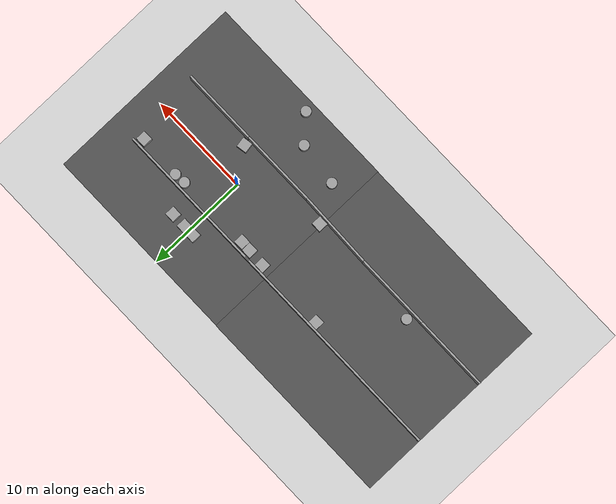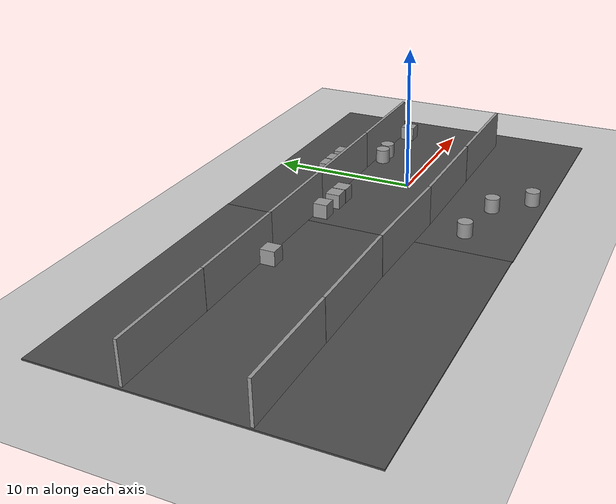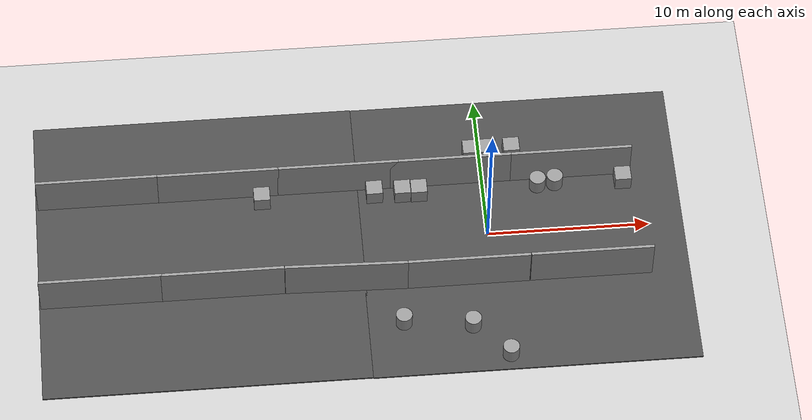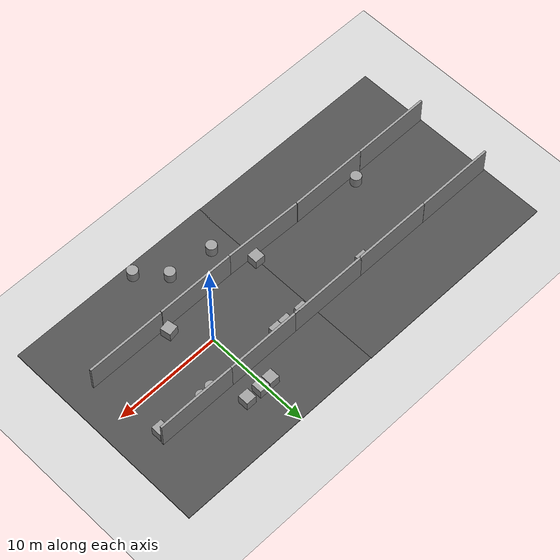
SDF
<sdf version="1.4">
 <world name="default">
  <physics type="ode">
   <gravity>0 0 -9.8</gravity>
   <ode>
    <solver><type>quick</type><iters>20</iters><sor>1</sor></solver>
    <constraints>
     <cfm>0</cfm>
     <erp>0.2</erp>
     <contact_max_correcting_vel>100</contact_max_correcting_vel>
     <contact_surface_layer>0</contact_surface_layer>
    </constraints>
   </ode>
   <max_step_size>0.001</max_step_size>
   <real_time_factor>1</real_time_factor>
   <real_time_update_rate>1000</real_time_update_rate>
  </physics>
  <light name="sun" type="directional">
   <pose>0 0 10 0 -0 0</pose>
   <diffuse>0.8 0.8 0.8 1</diffuse>
   <specular>0.2 0.2 0.2 1</specular>
   <attenuation>
    <range>1000</range>
    <constant>0.9</constant>
    <linear>0.01</linear>
    <quadratic>0.001</quadratic>
   </attenuation>
   <direction>-0.5 0.1 -0.9</direction>
  </light>
  <model name="ground_plane">
   <static>1</static>
   <link name="link">
    <collision name="collision">
     <geometry><plane><normal>0 0 1</normal><size>100 100</size></plane></geometry>
     <surface><friction><ode><mu>100</mu><mu2>50</mu2></ode></friction></surface>
    </collision>
    <visual name="visual">
     <cast_shadows>0</cast_shadows>
     <geometry><plane><normal>0 0 1</normal><size>100 100</size></plane></geometry>
     <material>
      <script><uri>file://media/materials/scripts/gazebo.material</uri><name>Gazebo/Grey</name></script>
     </material>
    </visual>
    <velocity_decay><linear>0</linear><angular>0</angular></velocity_decay>
   </link>
  </model>
  <scene><ambient>0.4 0.4 0.4 1</ambient><background>0.7 0.7 0.7 1</background><shadows>1</shadows></scene>
  <spherical_coordinates>
   <surface_model>EARTH_WGS84</surface_model>
   <latitude_deg>0</latitude_deg>
   <longitude_deg>0</longitude_deg>
   <elevation>0</elevation>
   <heading_deg>0</heading_deg>
  </spherical_coordinates>
  <model name="unit_box_1">
   <pose>2.11371 -2.87851 0.549997 4e-06 3e-06 0.170846</pose>
   <link name="link">
    <inertial>
     <mass>1</mass>
     <inertia><ixx>1</ixx><ixy>0</ixy><ixz>0</ixz><iyy>1</iyy><iyz>0</iyz><izz>1</izz></inertia>
    </inertial>
    <collision name="collision"><geometry><box><size>1 1 1</size></box></geometry></collision>
    <visual name="visual">
     <geometry><box><size>1 1 1</size></box></geometry>
     <material>
      <script><uri>file://media/materials/scripts/gazebo.material</uri><name>Gazebo/Grey</name></script>
     </material>
    </visual>
    <velocity_decay><linear>0</linear><angular>0</angular></velocity_decay>
   </link>
   <static>0</static>
  </model>
  <model name="unit_box_2">
   <pose>8.69769 3.25404 0.55 1e-06 -6.46235e-27 -3.4e-05</pose>
   <link name="link">
    <inertial>
     <mass>1</mass>
     <inertia><ixx>1</ixx><ixy>0</ixy><ixz>0</ixz><iyy>1</iyy><iyz>0</iyz><izz>1</izz></inertia>
    </inertial>
    <collision name="collision"><geometry><box><size>1 1 1</size></box></geometry></collision>
    <visual name="visual">
     <geometry><box><size>1 1 1</size></box></geometry>
     <material>
      <script><uri>file://media/materials/scripts/gazebo.material</uri><name>Gazebo/Grey</name></script>
     </material>
    </visual>
    <velocity_decay><linear>0</linear><angular>0</angular></velocity_decay>
   </link>
   <static>0</static>
  </model>
  <model name="unit_cylinder_1">
   <pose>4.47184 3.4 0.549993 5e-06 -2e-06 -1.6e-05</pose>
   <link name="link">
    <inertial>
     <mass>1</mass>
     <inertia><ixx>1</ixx><ixy>0</ixy><ixz>0</ixz><iyy>1</iyy><iyz>0</iyz><izz>1</izz></inertia>
    </inertial>
    <collision name="collision">
     <geometry><cylinder><radius>0.5</radius><length>1</length></cylinder></geometry>
    </collision>
    <visual name="visual">
     <geometry><cylinder><radius>0.5</radius><length>1</length></cylinder></geometry>
     <material>
      <script><uri>file://media/materials/scripts/gazebo.material</uri><name>Gazebo/Grey</name></script>
     </material>
    </visual>
    <velocity_decay><linear>0</linear><angular>0</angular></velocity_decay>
   </link>
   <static>0</static>
  </model>
  <model name="unit_cylinder_2">
   <pose>3.38561 3.31797 0.549993 4e-06 -2e-06 -3.9e-05</pose>
   <link name="link">
    <inertial>
     <mass>1</mass>
     <inertia><ixx>1</ixx><ixy>0</ixy><ixz>0</ixz><iyy>1</iyy><iyz>0</iyz><izz>1</izz></inertia>
    </inertial>
    <collision name="collision">
     <geometry><cylinder><radius>0.5</radius><length>1</length></cylinder></geometry>
    </collision>
    <visual name="visual">
     <geometry><cylinder><radius>0.5</radius><length>1</length></cylinder></geometry>
     <material>
      <script><uri>file://media/materials/scripts/gazebo.material</uri><name>Gazebo/Grey</name></script>
     </material>
    </visual>
    <velocity_decay><linear>0</linear><angular>0</angular></velocity_decay>
   </link>
   <static>0</static>
  </model>
  <model name="unit_cylinder_3">
   <pose>-19.1273 -2.65407 0.550005 6e-06 -8e-06 2.3e-05</pose>
   <link name="link">
    <inertial>
     <mass>1</mass>
     <inertia><ixx>1</ixx><ixy>0</ixy><ixz>0</ixz><iyy>1</iyy><iyz>0</iyz><izz>1</izz></inertia>
    </inertial>
    <collision name="collision">
     <geometry><cylinder><radius>0.5</radius><length>1</length></cylinder></geometry>
    </collision>
    <visual name="visual">
     <geometry><cylinder><radius>0.5</radius><length>1</length></cylinder></geometry>
     <material>
      <script><uri>file://media/materials/scripts/gazebo.material</uri><name>Gazebo/Grey</name></script>
     </material>
    </visual>
    <velocity_decay><linear>0</linear><angular>0</angular></velocity_decay>
   </link>
   <static>0</static>
  </model>
  <model name="unit_cylinder_4">
   <pose>-5.72682 -6.19145 0.550005 4e-06 -9e-06 -0.002435</pose>
   <link name="link">
    <inertial>
     <mass>1</mass>
     <inertia><ixx>1</ixx><ixy>0</ixy><ixz>0</ixz><iyy>1</iyy><iyz>0</iyz><izz>1</izz></inertia>
    </inertial>
    <collision name="collision">
     <geometry><cylinder><radius>0.5</radius><length>1</length></cylinder></geometry>
    </collision>
    <visual name="visual">
     <geometry><cylinder><radius>0.5</radius><length>1</length></cylinder></geometry>
     <material>
      <script><uri>file://media/materials/scripts/gazebo.material</uri><name>Gazebo/Grey</name></script>
     </material>
    </visual>
    <velocity_decay><linear>0</linear><angular>0</angular></velocity_decay>
   </link>
   <static>0</static>
  </model>
  <model name="unit_box_3">
   <pose>-4.02722 3.24905 0.55 0 -1e-06 0.000206</pose>
   <link name="link">
    <inertial>
     <mass>1</mass>
     <inertia><ixx>1</ixx><ixy>0</ixy><ixz>0</ixz><iyy>1</iyy><iyz>0</iyz><izz>1</izz></inertia>
    </inertial>
    <collision name="collision"><geometry><box><size>1 1 1</size></box></geometry></collision>
    <visual name="visual">
     <geometry><box><size>1 1 1</size></box></geometry>
     <material>
      <script><uri>file://media/materials/scripts/gazebo.material</uri><name>Gazebo/Grey</name></script>
     </material>
    </visual>
    <velocity_decay><linear>0</linear><angular>0</angular></velocity_decay>
   </link>
   <static>0</static>
  </model>
  <model name="unit_box_4">
   <pose>-5.05589 3.27177 0.549997 3e-06 3e-06 0.015092</pose>
   <link name="link">
    <inertial>
     <mass>1</mass>
     <inertia><ixx>1</ixx><ixy>0</ixy><ixz>0</ixz><iyy>1</iyy><iyz>0</iyz><izz>1</izz></inertia>
    </inertial>
    <collision name="collision"><geometry><box><size>1 1 1</size></box></geometry></collision>
    <visual name="visual">
     <geometry><box><size>1 1 1</size></box></geometry>
     <material>
      <script><uri>file://media/materials/scripts/gazebo.material</uri><name>Gazebo/Grey</name></script>
     </material>
    </visual>
    <velocity_decay><linear>0</linear><angular>0</angular></velocity_decay>
   </link>
   <static>0</static>
  </model>
  <model name="unit_box_5">
   <pose>-6.79244 3.348 0.55 0 -0 0.014775</pose>
   <link name="link">
    <inertial>
     <mass>1</mass>
     <inertia><ixx>1</ixx><ixy>0</ixy><ixz>0</ixz><iyy>1</iyy><iyz>0</iyz><izz>1</izz></inertia>
    </inertial>
    <collision name="collision"><geometry><box><size>1 1 1</size></box></geometry></collision>
    <visual name="visual">
     <geometry><box><size>1 1 1</size></box></geometry>
     <material>
      <script><uri>file://media/materials/scripts/gazebo.material</uri><name>Gazebo/Grey</name></script>
     </material>
    </visual>
    <velocity_decay><linear>0</linear><angular>0</angular></velocity_decay>
   </link>
   <static>0</static>
  </model>
  <model name="unit_box_6">
   <pose>-0.543299 5.99996 0.549996 -4e-06 -4e-06 4.2e-05</pose>
   <link name="link">
    <inertial>
     <mass>1</mass>
     <inertia><ixx>1</ixx><ixy>0</ixy><ixz>0</ixz><iyy>1</iyy><iyz>0</iyz><izz>1</izz></inertia>
    </inertial>
    <collision name="collision"><geometry><box><size>1 1 1</size></box></geometry></collision>
    <visual name="visual">
     <geometry><box><size>1 1 1</size></box></geometry>
     <material>
      <script><uri>file://media/materials/scripts/gazebo.material</uri><name>Gazebo/Grey</name></script>
     </material>
    </visual>
    <velocity_decay><linear>0</linear><angular>0</angular></velocity_decay>
   </link>
   <static>0</static>
  </model>
  <model name="unit_box_7">
   <pose>0.516579 5.99991 0.549996 -4e-06 -4e-06 3e-06</pose>
   <link name="link">
    <inertial>
     <mass>1</mass>
     <inertia><ixx>1</ixx><ixy>0</ixy><ixz>0</ixz><iyy>1</iyy><iyz>0</iyz><izz>1</izz></inertia>
    </inertial>
    <collision name="collision"><geometry><box><size>1 1 1</size></box></geometry></collision>
    <visual name="visual">
     <geometry><box><size>1 1 1</size></box></geometry>
     <material>
      <script><uri>file://media/materials/scripts/gazebo.material</uri><name>Gazebo/Grey</name></script>
     </material>
    </visual>
    <velocity_decay><linear>0</linear><angular>0</angular></velocity_decay>
   </link>
   <static>0</static>
  </model>
  <model name="unit_box_8">
   <pose>2.00014 5.99997 0.549997 3e-06 3e-06 3.7e-05</pose>
   <link name="link">
    <inertial>
     <mass>1</mass>
     <inertia><ixx>1</ixx><ixy>0</ixy><ixz>0</ixz><iyy>1</iyy><iyz>0</iyz><izz>1</izz></inertia>
    </inertial>
    <collision name="collision"><geometry><box><size>1 1 1</size></box></geometry></collision>
    <visual name="visual">
     <geometry><box><size>1 1 1</size></box></geometry>
     <material>
      <script><uri>file://media/materials/scripts/gazebo.material</uri><name>Gazebo/Grey</name></script>
     </material>
    </visual>
    <velocity_decay><linear>0</linear><angular>0</angular></velocity_decay>
   </link>
   <static>0</static>
  </model>
  <model name="unit_box_9">
   <pose>-13.7788 3.4 0.549993 1e-06 2e-06 8.07794e-28</pose>
   <link name="link">
    <inertial>
     <mass>1</mass>
     <inertia><ixx>1</ixx><ixy>0</ixy><ixz>0</ixz><iyy>1</iyy><iyz>0</iyz><izz>1</izz></inertia>
    </inertial>
    <collision name="collision"><geometry><box><size>1 1 1</size></box></geometry></collision>
    <visual name="visual">
     <geometry><box><size>1 1 1</size></box></geometry>
     <material>
      <script><uri>file://media/materials/scripts/gazebo.material</uri><name>Gazebo/Grey</name></script>
     </material>
    </visual>
    <velocity_decay><linear>0</linear><angular>0</angular></velocity_decay>
   </link>
   <static>0</static>
  </model>
  <model name="unit_cylinder_5">
   <pose>-1.55825 -6.72762 0.550004 3e-06 -8e-06 -3.3e-05</pose>
   <link name="link">
    <inertial>
     <mass>1</mass>
     <inertia><ixx>1</ixx><ixy>0</ixy><ixz>0</ixz><iyy>1</iyy><iyz>0</iyz><izz>1</izz></inertia>
    </inertial>
    <collision name="collision">
     <geometry><cylinder><radius>0.5</radius><length>1</length></cylinder></geometry>
    </collision>
    <visual name="visual">
     <geometry><cylinder><radius>0.5</radius><length>1</length></cylinder></geometry>
     <material>
      <script><uri>file://media/materials/scripts/gazebo.material</uri><name>Gazebo/Grey</name></script>
     </material>
    </visual>
    <velocity_decay><linear>0</linear><angular>0</angular></velocity_decay>
   </link>
   <static>0</static>
  </model>
  <model name="unit_cylinder_6">
   <pose>0.530369 -8.94729 0.550005 4e-06 -8e-06 -3.8e-05</pose>
   <link name="link">
    <inertial>
     <mass>1</mass>
     <inertia><ixx>1</ixx><ixy>0</ixy><ixz>0</ixz><iyy>1</iyy><iyz>0</iyz><izz>1</izz></inertia>
    </inertial>
    <collision name="collision">
     <geometry><cylinder><radius>0.5</radius><length>1</length></cylinder></geometry>
    </collision>
    <visual name="visual">
     <geometry><cylinder><radius>0.5</radius><length>1</length></cylinder></geometry>
     <material>
      <script><uri>file://media/materials/scripts/gazebo.material</uri><name>Gazebo/Grey</name></script>
     </material>
    </visual>
    <velocity_decay><linear>0</linear><angular>0</angular></velocity_decay>
   </link>
   <static>0</static>
  </model>
  <model name="unit_box_10">
   <pose>-7.639 -2.88799 0.549997 -3e-06 -3e-06 -0.011088</pose>
   <link name="link">
    <inertial>
     <mass>1</mass>
     <inertia><ixx>1</ixx><ixy>0</ixy><ixz>0</ixz><iyy>1</iyy><iyz>0</iyz><izz>1</izz></inertia>
    </inertial>
    <collision name="collision"><geometry><box><size>1 1 1</size></box></geometry></collision>
    <visual name="visual">
     <geometry><box><size>1 1 1</size></box></geometry>
     <material>
      <script><uri>file://media/materials/scripts/gazebo.material</uri><name>Gazebo/Grey</name></script>
     </material>
    </visual>
    <velocity_decay><linear>0</linear><angular>0</angular></velocity_decay>
   </link>
   <static>0</static>
  </model>
  <model name="asphalt_plane">
   <static>1</static>
   <link name="link">
    <collision name="collision"><geometry><box><size>20 20 0.1</size></box></geometry></collision>
    <visual name="visual">
     <cast_shadows>0</cast_shadows>
     <geometry><box><size>20 20 0.1</size></box></geometry>
     <material>
      <script>
       <uri>model://asphalt_plane/materials/scripts</uri>
       <uri>model://asphalt_plane/materials/textures</uri>
       <name>vrc/asphalt</name>
      </script>
     </material>
    </visual>
    <velocity_decay><linear>0</linear><angular>0</angular></velocity_decay>
   </link>
   <pose>2.11096 0.047895 0 0 -0 0</pose>
  </model>
  <model name="grey_wall">
   <static>1</static>
   <link name="link">
    <pose>0 0 1.4 0 -0 0</pose>
    <collision name="collision"><geometry><box><size>7.5 0.2 2.8</size></box></geometry></collision>
    <visual name="visual">
     <cast_shadows>0</cast_shadows>
     <geometry><box><size>7.5 0.2 2.8</size></box></geometry>
     <material>
      <script>
       <uri>model://grey_wall/materials/scripts</uri>
       <uri>model://grey_wall/materials/textures</uri>
       <name>vrc/grey_wall</name>
      </script>
     </material>
    </visual>
    <velocity_decay><linear>0</linear><angular>0</angular></velocity_decay>
   </link>
   <pose>-9.01495 -3.45912 0 0 0 -0.026807</pose>
  </model>
  <model name="grey_wall_0">
   <static>1</static>
   <link name="link">
    <pose>0 0 1.4 0 -0 0</pose>
    <collision name="collision"><geometry><box><size>7.5 0.2 2.8</size></box></geometry></collision>
    <visual name="visual">
     <cast_shadows>0</cast_shadows>
     <geometry><box><size>7.5 0.2 2.8</size></box></geometry>
     <material>
      <script>
       <uri>model://grey_wall/materials/scripts</uri>
       <uri>model://grey_wall/materials/textures</uri>
       <name>vrc/grey_wall</name>
      </script>
     </material>
    </visual>
    <velocity_decay><linear>0</linear><angular>0</angular></velocity_decay>
   </link>
   <pose>-9 4 0 0 -0 0</pose>
  </model>
  <model name="grey_wall_1">
   <static>1</static>
   <link name="link">
    <pose>0 0 1.4 0 -0 0</pose>
    <collision name="collision"><geometry><box><size>7.5 0.2 2.8</size></box></geometry></collision>
    <visual name="visual">
     <cast_shadows>0</cast_shadows>
     <geometry><box><size>7.5 0.2 2.8</size></box></geometry>
     <material>
      <script>
       <uri>model://grey_wall/materials/scripts</uri>
       <uri>model://grey_wall/materials/textures</uri>
       <name>vrc/grey_wall</name>
      </script>
     </material>
    </visual>
    <velocity_decay><linear>0</linear><angular>0</angular></velocity_decay>
   </link>
   <pose>-2 4 0 0 -0 0</pose>
  </model>
  <model name="grey_wall_2">
   <static>1</static>
   <link name="link">
    <pose>0 0 1.4 0 -0 0</pose>
    <collision name="collision"><geometry><box><size>7.5 0.2 2.8</size></box></geometry></collision>
    <visual name="visual">
     <cast_shadows>0</cast_shadows>
     <geometry><box><size>7.5 0.2 2.8</size></box></geometry>
     <material>
      <script>
       <uri>model://grey_wall/materials/scripts</uri>
       <uri>model://grey_wall/materials/textures</uri>
       <name>vrc/grey_wall</name>
      </script>
     </material>
    </visual>
    <velocity_decay><linear>0</linear><angular>0</angular></velocity_decay>
   </link>
   <pose>5.49448 4 0 0 -0 0</pose>
  </model>
  <model name="grey_wall_3">
   <static>1</static>
   <link name="link">
    <pose>0 0 1.4 0 -0 0</pose>
    <collision name="collision"><geometry><box><size>7.5 0.2 2.8</size></box></geometry></collision>
    <visual name="visual">
     <cast_shadows>0</cast_shadows>
     <geometry><box><size>7.5 0.2 2.8</size></box></geometry>
     <material>
      <script>
       <uri>model://grey_wall/materials/scripts</uri>
       <uri>model://grey_wall/materials/textures</uri>
       <name>vrc/grey_wall</name>
      </script>
     </material>
    </visual>
    <velocity_decay><linear>0</linear><angular>0</angular></velocity_decay>
   </link>
   <pose>-1.54611 -3.55647 0 0 -0 0</pose>
  </model>
  <model name="grey_wall_4">
   <static>1</static>
   <link name="link">
    <pose>0 0 1.4 0 -0 0</pose>
    <collision name="collision"><geometry><box><size>7.5 0.2 2.8</size></box></geometry></collision>
    <visual name="visual">
     <cast_shadows>0</cast_shadows>
     <geometry><box><size>7.5 0.2 2.8</size></box></geometry>
     <material>
      <script>
       <uri>model://grey_wall/materials/scripts</uri>
       <uri>model://grey_wall/materials/textures</uri>
       <name>vrc/grey_wall</name>
      </script>
     </material>
    </visual>
    <velocity_decay><linear>0</linear><angular>0</angular></velocity_decay>
   </link>
   <pose>6 -3.54794 0 0 -0 0</pose>
  </model>
  <model name="asphalt_plane_0">
   <static>1</static>
   <link name="link">
    <collision name="collision"><geometry><box><size>20 20 0.1</size></box></geometry></collision>
    <visual name="visual">
     <cast_shadows>0</cast_shadows>
     <geometry><box><size>20 20 0.1</size></box></geometry>
     <material>
      <script>
       <uri>model://asphalt_plane/materials/scripts</uri>
       <uri>model://asphalt_plane/materials/textures</uri>
       <name>vrc/asphalt</name>
      </script>
     </material>
    </visual>
    <velocity_decay><linear>0</linear><angular>0</angular></velocity_decay>
   </link>
   <pose>-17.8021 0.081124 0 0 -0 0</pose>
  </model>
  <model name="grey_wall_5">
   <static>1</static>
   <link name="link">
    <pose>0 0 1.4 0 -0 0</pose>
    <collision name="collision"><geometry><box><size>7.5 0.2 2.8</size></box></geometry></collision>
    <visual name="visual">
     <cast_shadows>0</cast_shadows>
     <geometry><box><size>7.5 0.2 2.8</size></box></geometry>
     <material>
      <script>
       <uri>model://grey_wall/materials/scripts</uri>
       <uri>model://grey_wall/materials/textures</uri>
       <name>vrc/grey_wall</name>
      </script>
     </material>
    </visual>
    <velocity_decay><linear>0</linear><angular>0</angular></velocity_decay>
   </link>
   <pose>-16.4196 4 0 0 -0 0</pose>
  </model>
  <model name="grey_wall_6">
   <static>1</static>
   <link name="link">
    <pose>0 0 1.4 0 -0 0</pose>
    <collision name="collision"><geometry><box><size>7.5 0.2 2.8</size></box></geometry></collision>
    <visual name="visual">
     <cast_shadows>0</cast_shadows>
     <geometry><box><size>7.5 0.2 2.8</size></box></geometry>
     <material>
      <script>
       <uri>model://grey_wall/materials/scripts</uri>
       <uri>model://grey_wall/materials/textures</uri>
       <name>vrc/grey_wall</name>
      </script>
     </material>
    </visual>
    <velocity_decay><linear>0</linear><angular>0</angular></velocity_decay>
   </link>
   <pose>-16.5372 -3.35247 0 0 -0 0</pose>
  </model>
  <model name="grey_wall_7">
   <static>1</static>
   <link name="link">
    <pose>0 0 1.4 0 -0 0</pose>
    <collision name="collision"><geometry><box><size>7.5 0.2 2.8</size></box></geometry></collision>
    <visual name="visual">
     <cast_shadows>0</cast_shadows>
     <geometry><box><size>7.5 0.2 2.8</size></box></geometry>
     <material>
      <script>
       <uri>model://grey_wall/materials/scripts</uri>
       <uri>model://grey_wall/materials/textures</uri>
       <name>vrc/grey_wall</name>
      </script>
     </material>
    </visual>
    <velocity_decay><linear>0</linear><angular>0</angular></velocity_decay>
   </link>
   <pose>-23.913 4.00991 0 0 -0 0</pose>
  </model>
  <model name="grey_wall_8">
   <static>1</static>
   <link name="link">
    <pose>0 0 1.4 0 -0 0</pose>
    <collision name="collision"><geometry><box><size>7.5 0.2 2.8</size></box></geometry></collision>
    <visual name="visual">
     <cast_shadows>0</cast_shadows>
     <geometry><box><size>7.5 0.2 2.8</size></box></geometry>
     <material>
      <script>
       <uri>model://grey_wall/materials/scripts</uri>
       <uri>model://grey_wall/materials/textures</uri>
       <name>vrc/grey_wall</name>
      </script>
     </material>
    </visual>
    <velocity_decay><linear>0</linear><angular>0</angular></velocity_decay>
   </link>
   <pose>-23.9641 -3.34323 0 0 -0 0</pose>
  </model>
 </world>
</sdf>
